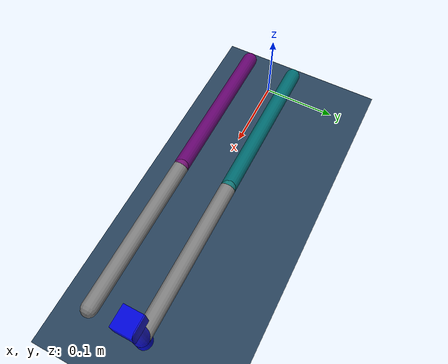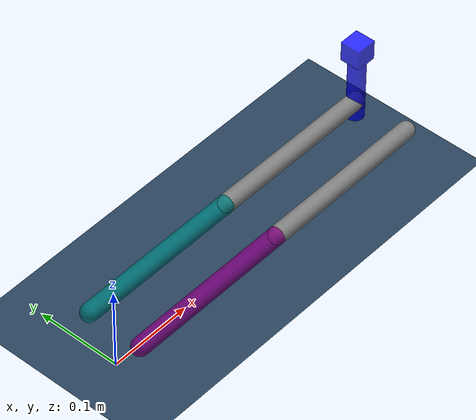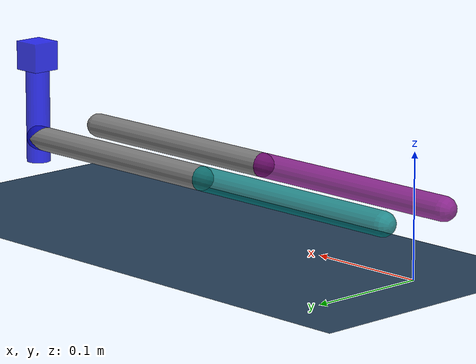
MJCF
<mujoco model="2R_robot_double_with_pen">

  <compiler angle="radian"/>
  <option integrator = "implicit" timestep = "0.002"
          jacobian = "dense" cone = "elliptic"
          solver = "Newton" tolerance="1e-10"/>

  <visual>
    <headlight diffuse="0.6 0.6 0.6" ambient="0.3 0.3 0.3" specular="0 0 0"/>
    <rgba haze="0.15 0.25 0.35 1"/>
    <global azimuth="160" elevation="-20"/>
  </visual>

  <asset>
      <texture type="skybox" builtin="gradient" rgb1=".3 .5 .7" rgb2="0 0 0" width="512" height="512"/>
      <texture name="grid" type="2d" builtin="checker" width="512" height="512" rgb1=".1 .2 .3" rgb2=".2 .3 .4"/>
      <material name="grid" texture="grid" texrepeat="1 1" texuniform="true" reflectance=".2"/>
  </asset>

  <!-- Worldbody: the ground (plane) -->
  <worldbody>

    <light pos="0 0 1.5" dir="0 0 -1" directional="true"/>
    <geom name="floor" size="0.5 0.5 0.05" type="plane" material="grid"/>

    <!-- Proximal link left side -->
    <body name="l1_left" pos="0 0.0335 0.05">
      <joint name="j1_left" type="hinge" pos="0 0 0" axis="0 0 1" range="-0.785 1.57" frictionloss="0.005"/>
      <geom type="capsule" fromto="0 0 0 0.2 0 0" size="0.01" density="800" rgba="0 0.5 0.5 0.8"/>

      <!-- Distal link left side -->
      <body name="l2_left" pos="0.2 0 0">
        <joint name="j2_left" type="hinge" pos="0 0 0" axis="0 0 1" frictionloss="0.005"/>
        <geom type="capsule" fromto="0 0 0 0.2 0 0" size="0.01" density="800" />

        <!-- Pen (Cylinder) attached to the tip of the second arm -->
        <body name="pen" pos="0.2 0 0">
          <joint name="pen_joint" type="hinge" pos="0 0 0" axis="0 0 1" frictionloss="0.005" />
          <geom type="cylinder" size="0.01 0.05" pos="0 0 0.03" rgba="0 0 1 0.8" />
          <geom type="box" size="0.012 0.012 0.012" pos="0 0 0.07" rgba="0 0 1 0.8"/>
          <site name="site_pen" pos="0 0 0"/>
        </body>
      </body>
    </body>

    <!-- Proximal link right side -->
    <body name="l1_right" pos="0 -0.0335 0.05">
      <joint name="j1_right" type="hinge" pos="0 0 0" axis="0 0 1" range="-1.57 0.785" frictionloss="0.005"/>
      <geom type="capsule" fromto="0 0 0 0.2 0 0" size="0.01" density="800" rgba="0.5 0 0.5 0.8" />

      <!-- Distal link right side -->
      <body name="l2_right" pos="0.2 0 0">
        <joint name="j2_right" type="hinge" pos="0 0 0" axis="0 0 1" frictionloss="0.005" />
        <geom type="capsule" fromto="0 0 0 0.2 0 0" size="0.01" density="800" />
        <site name="site_l2r_end" pos="0.2 0 0"/>
      </body>
    </body>

  </worldbody>

  <!-- Constraints -->
  <equality>
    <!-- Connect constraint to make a pin joint between the pen and the second arm -->
    <connect body1="l2_right" body2="pen" anchor="0.2 0 0" />
  </equality>

  <!-- Actuation -->
  <actuator>
    <motor name="motor_torque_left" joint="j1_left" ctrlrange="-0.1 0.1" />
    <motor name="motor_torque_right" joint="j1_right" ctrlrange="-0.1 0.1" />
  </actuator>

  <!-- Initial pose -->
  <keyframe>
    <key name="initial_pose" qpos="0 -0.16824 0 0 0.16824"/>
  </keyframe>

</mujoco>
